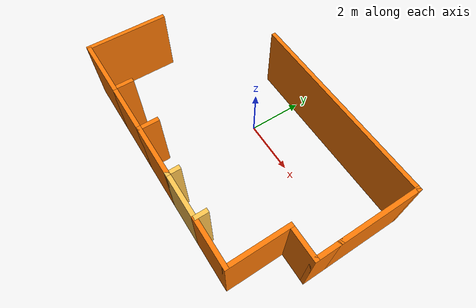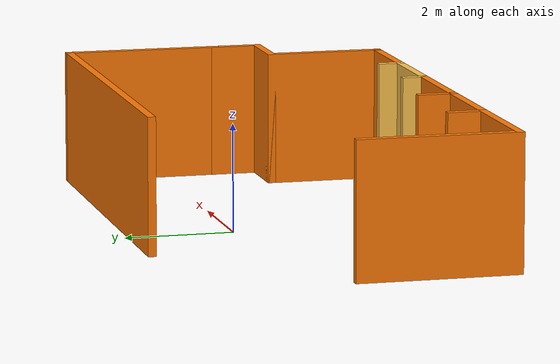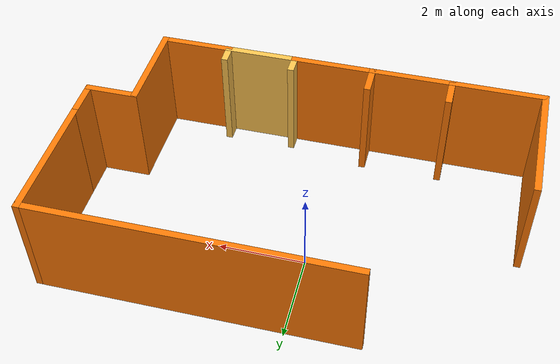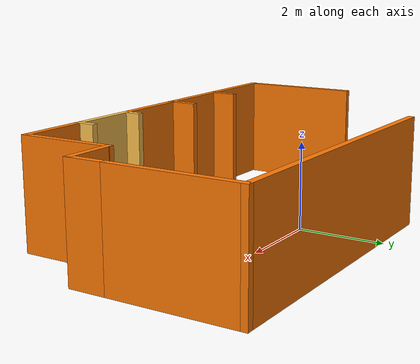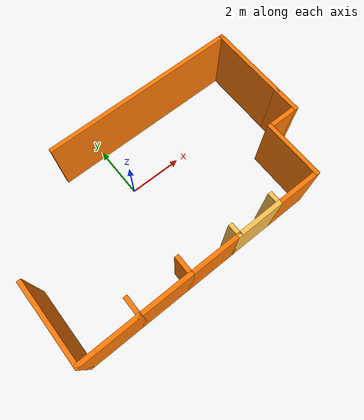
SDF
<?xml version='1.0'?>
<sdf version='1.6'>
  <model name='parking'>
    <pose frame=''>0.45 -1.03 0 0 -0 0</pose>
    <link name='Wall_13'>
      <collision name='Wall_13_Collision'>
        <geometry>
          <box>
            <size>3 0.15 2.5</size>
          </box>
        </geometry>
        <pose frame=''>0 0 1.25 0 -0 0</pose>
      </collision>
      <visual name='Wall_13_Visual'>
        <pose frame=''>0 0 1.25 0 -0 0</pose>
        <geometry>
          <box>
            <size>3 0.15 2.5</size>
          </box>
        </geometry>
        <material>
          <script>
            <uri>file://media/materials/scripts/gazebo.material</uri>
            <name>Gazebo/Grey</name>
          </script>
          <ambient>0.996078 0.47451 0.0196078 1</ambient>
        </material>
        <meta>
          <layer>0</layer>
        </meta>
      </visual>
      <pose frame=''>-5.05 -1.475 0 0 0 -1.5708</pose>
    </link>
    <link name='Wall_14'>
      <collision name='Wall_14_Collision'>
        <geometry>
          <box>
            <size>2.25 0.15 2.5</size>
          </box>
        </geometry>
        <pose frame=''>0 0 1.25 0 -0 0</pose>
      </collision>
      <visual name='Wall_14_Visual'>
        <pose frame=''>0 0 1.25 0 -0 0</pose>
        <geometry>
          <box>
            <size>2.25 0.15 2.5</size>
          </box>
        </geometry>
        <material>
          <script>
            <uri>file://media/materials/scripts/gazebo.material</uri>
            <name>Gazebo/Grey</name>
          </script>
          <ambient>0.996078 0.47451 0.0196078 1</ambient>
        </material>
        <meta>
          <layer>0</layer>
        </meta>
      </visual>
      <pose frame=''>-4 -2.9 0 0 -0 0</pose>
    </link>
    <link name='Wall_15'>
      <collision name='Wall_15_Collision'>
        <geometry>
          <box>
            <size>0.75 0.15 2.5</size>
          </box>
        </geometry>
        <pose frame=''>0 0 1.25 0 -0 0</pose>
      </collision>
      <visual name='Wall_15_Visual'>
        <pose frame=''>0 0 1.25 0 -0 0</pose>
        <geometry>
          <box>
            <size>0.75 0.15 2.5</size>
          </box>
        </geometry>
        <material>
          <script>
            <uri>file://media/materials/scripts/gazebo.material</uri>
            <name>Gazebo/Grey</name>
          </script>
          <ambient>0.996078 0.47451 0.0196078 1</ambient>
        </material>
        <meta>
          <layer>0</layer>
        </meta>
      </visual>
      <pose frame=''>-2.95 -2.6 0 0 -0 1.5708</pose>
    </link>
    <link name='Wall_17'>
      <collision name='Wall_17_Collision'>
        <geometry>
          <box>
            <size>2 0.15 2.5</size>
          </box>
        </geometry>
        <pose frame=''>0 0 1.25 0 -0 0</pose>
      </collision>
      <visual name='Wall_17_Visual'>
        <pose frame=''>0 0 1.25 0 -0 0</pose>
        <geometry>
          <box>
            <size>2 0.15 2.5</size>
          </box>
        </geometry>
        <material>
          <script>
            <uri>file://media/materials/scripts/gazebo.material</uri>
            <name>Gazebo/Grey</name>
          </script>
          <ambient>0.996078 0.47451 0.0196078 1</ambient>
        </material>
        <meta>
          <layer>0</layer>
        </meta>
      </visual>
      <pose frame=''>-2.025 -2.9 0 0 -0 0</pose>
    </link>
    <link name='Wall_18'>
      <collision name='Wall_18_Collision'>
        <geometry>
          <box>
            <size>0.75 0.15 2.5</size>
          </box>
        </geometry>
        <pose frame=''>0 0 1.25 0 -0 0</pose>
      </collision>
      <visual name='Wall_18_Visual'>
        <pose frame=''>0 0 1.25 0 -0 0</pose>
        <geometry>
          <box>
            <size>0.75 0.15 2.5</size>
          </box>
        </geometry>
        <material>
          <script>
            <uri>file://media/materials/scripts/gazebo.material</uri>
            <name>Gazebo/Grey</name>
          </script>
          <ambient>0.996078 0.47451 0.0196078 1</ambient>
        </material>
        <meta>
          <layer>0</layer>
        </meta>
      </visual>
      <pose frame=''>-1.1 -2.6 0 0 -0 1.5708</pose>
    </link>
    <link name='Wall_20'>
      <collision name='Wall_20_Collision'>
        <geometry>
          <box>
            <size>2 0.15 2.5</size>
          </box>
        </geometry>
        <pose frame=''>0 0 1.25 0 -0 0</pose>
      </collision>
      <visual name='Wall_20_Visual'>
        <pose frame=''>0 0 1.25 0 -0 0</pose>
        <geometry>
          <box>
            <size>2 0.15 2.5</size>
          </box>
        </geometry>
        <material>
          <script>
            <uri>file://media/materials/scripts/gazebo.material</uri>
            <name>Gazebo/Grey</name>
          </script>
          <ambient>0.996078 0.47451 0.0196078 1</ambient>
        </material>
        <meta>
          <layer>0</layer>
        </meta>
      </visual>
      <pose frame=''>-0.175 -2.9 0 0 -0 0</pose>
    </link>
    <link name='Wall_21'>
      <collision name='Wall_21_Collision'>
        <geometry>
          <box>
            <size>0.5 0.15 2.5</size>
          </box>
        </geometry>
        <pose frame=''>0 0 1.25 0 -0 0</pose>
      </collision>
      <visual name='Wall_21_Visual'>
        <pose frame=''>0 0 1.25 0 -0 0</pose>
        <geometry>
          <box>
            <size>0.5 0.15 2.5</size>
          </box>
        </geometry>
        <material>
          <script>
            <uri>file://media/materials/scripts/gazebo.material</uri>
            <name>Gazebo/Grey</name>
          </script>
          <ambient>1 0.764706 0.305882 1</ambient>
        </material>
        <meta>
          <layer>0</layer>
        </meta>
      </visual>
      <pose frame=''>0.75 -2.725 0 0 -0 1.5708</pose>
    </link>
    <link name='Wall_23'>
      <collision name='Wall_23_Collision'>
        <geometry>
          <box>
            <size>1.75 0.15 2.5</size>
          </box>
        </geometry>
        <pose frame=''>0 0 1.25 0 -0 0</pose>
      </collision>
      <visual name='Wall_23_Visual'>
        <pose frame=''>0 0 1.25 0 -0 0</pose>
        <geometry>
          <box>
            <size>1.75 0.15 2.5</size>
          </box>
        </geometry>
        <material>
          <script>
            <uri>file://media/materials/scripts/gazebo.material</uri>
            <name>Gazebo/Grey</name>
          </script>
          <ambient>1 0.764706 0.305882 1</ambient>
        </material>
        <meta>
          <layer>0</layer>
        </meta>
      </visual>
      <pose frame=''>1.55 -2.9 0 0 -0 0</pose>
    </link>
    <link name='Wall_24'>
      <collision name='Wall_24_Collision'>
        <geometry>
          <box>
            <size>0.5 0.15 2.5</size>
          </box>
        </geometry>
        <pose frame=''>0 0 1.25 0 -0 0</pose>
      </collision>
      <visual name='Wall_24_Visual'>
        <pose frame=''>0 0 1.25 0 -0 0</pose>
        <geometry>
          <box>
            <size>0.5 0.15 2.5</size>
          </box>
        </geometry>
        <material>
          <script>
            <uri>file://media/materials/scripts/gazebo.material</uri>
            <name>Gazebo/Grey</name>
          </script>
          <ambient>1 0.764706 0.305882 1</ambient>
        </material>
        <meta>
          <layer>0</layer>
        </meta>
      </visual>
      <pose frame=''>2.35 -2.725 0 0 -0 1.5708</pose>
    </link>
    <link name='Wall_26'>
      <collision name='Wall_26_Collision'>
        <geometry>
          <box>
            <size>1.75 0.15 2.5</size>
          </box>
        </geometry>
        <pose frame=''>0 0 1.25 0 -0 0</pose>
      </collision>
      <visual name='Wall_26_Visual'>
        <pose frame=''>0 0 1.25 0 -0 0</pose>
        <geometry>
          <box>
            <size>1.75 0.15 2.5</size>
          </box>
        </geometry>
        <material>
          <script>
            <uri>file://media/materials/scripts/gazebo.material</uri>
            <name>Gazebo/Grey</name>
          </script>
          <ambient>0.996078 0.47451 0.0196078 1</ambient>
        </material>
        <meta>
          <layer>0</layer>
        </meta>
      </visual>
      <pose frame=''>3.15 -2.9 0 0 -0 0</pose>
    </link>
    <link name='Wall_27'>
      <collision name='Wall_27_Collision'>
        <geometry>
          <box>
            <size>2.25 0.15 2.5</size>
          </box>
        </geometry>
        <pose frame=''>0 0 1.25 0 -0 0</pose>
      </collision>
      <visual name='Wall_27_Visual'>
        <pose frame=''>0 0 1.25 0 -0 0</pose>
        <geometry>
          <box>
            <size>2.25 0.15 2.5</size>
          </box>
        </geometry>
        <material>
          <script>
            <uri>file://media/materials/scripts/gazebo.material</uri>
            <name>Gazebo/Grey</name>
          </script>
          <ambient>0.996078 0.47451 0.0196078 1</ambient>
        </material>
        <meta>
          <layer>0</layer>
        </meta>
      </visual>
      <pose frame=''>3.95 -1.85 0 0 -0 1.5708</pose>
    </link>
    <link name='Wall_28'>
      <collision name='Wall_28_Collision'>
        <geometry>
          <box>
            <size>1.25 0.15 2.5</size>
          </box>
        </geometry>
        <pose frame=''>0 0 1.25 0 -0 0</pose>
      </collision>
      <visual name='Wall_28_Visual'>
        <pose frame=''>0 0 1.25 0 -0 0</pose>
        <geometry>
          <box>
            <size>1.25 0.15 2.5</size>
          </box>
        </geometry>
        <material>
          <script>
            <uri>file://media/materials/scripts/gazebo.material</uri>
            <name>Gazebo/Grey</name>
          </script>
          <ambient>0.996078 0.47451 0.0196078 1</ambient>
        </material>
        <meta>
          <layer>0</layer>
        </meta>
      </visual>
      <pose frame=''>4.5 -0.8 0 0 -0 0</pose>
    </link>
    <link name='Wall_29'>
      <collision name='Wall_29_Collision'>
        <geometry>
          <box>
            <size>1 0.15 2.5</size>
          </box>
        </geometry>
        <pose frame=''>0 0 1.25 0 -0 0</pose>
      </collision>
      <visual name='Wall_29_Visual'>
        <pose frame=''>0 0 1.25 0 -0 0</pose>
        <geometry>
          <box>
            <size>1 0.15 2.5</size>
          </box>
        </geometry>
        <material>
          <script>
            <uri>file://media/materials/scripts/gazebo.material</uri>
            <name>Gazebo/Grey</name>
          </script>
          <ambient>0.996078 0.47451 0.0196078 1</ambient>
        </material>
        <meta>
          <layer>0</layer>
        </meta>
      </visual>
      <pose frame=''>5.05 -0.375 0 0 -0 1.5708</pose>
    </link>
    <link name='Wall_70'>
      <collision name='Wall_70_Collision'>
        <geometry>
          <box>
            <size>3 0.15 2.5</size>
          </box>
        </geometry>
        <pose frame=''>0 0 1.25 0 -0 0</pose>
      </collision>
      <visual name='Wall_70_Visual'>
        <pose frame=''>0 0 1.25 0 -0 0</pose>
        <geometry>
          <box>
            <size>3 0.15 2.5</size>
          </box>
        </geometry>
        <material>
          <script>
            <uri>file://media/materials/scripts/gazebo.material</uri>
            <name>Gazebo/Grey</name>
          </script>
          <ambient>0.996078 0.47451 0.0196078 1</ambient>
        </material>
        <meta>
          <layer>0</layer>
        </meta>
      </visual>
      <pose frame=''>5.05 1.475 0 0 -0 1.5708</pose>
    </link>
    <link name='Wall_71'>
      <collision name='Wall_71_Collision'>
        <geometry>
          <box>
            <size>7.25 0.15 2.5</size>
          </box>
        </geometry>
        <pose frame=''>0 0 1.25 0 -0 0</pose>
      </collision>
      <visual name='Wall_71_Visual'>
        <pose frame=''>0 0 1.25 0 -0 0</pose>
        <geometry>
          <box>
            <size>7.25 0.15 2.5</size>
          </box>
        </geometry>
        <material>
          <script>
            <uri>file://media/materials/scripts/gazebo.material</uri>
            <name>Gazebo/Grey</name>
          </script>
          <ambient>0.996078 0.47451 0.0196078 1</ambient>
        </material>
        <meta>
          <layer>0</layer>
        </meta>
      </visual>
      <pose frame=''>1.5 2.9 0 0 -0 3.14159</pose>
    </link>
    <static>1</static>
  </model>
</sdf>
